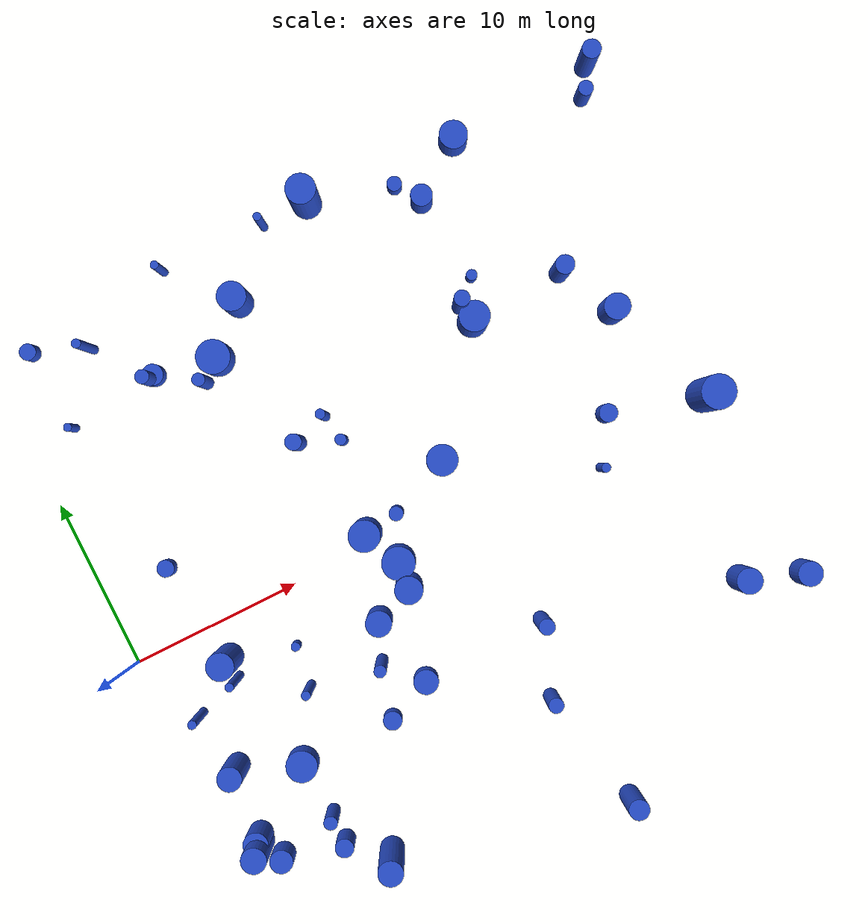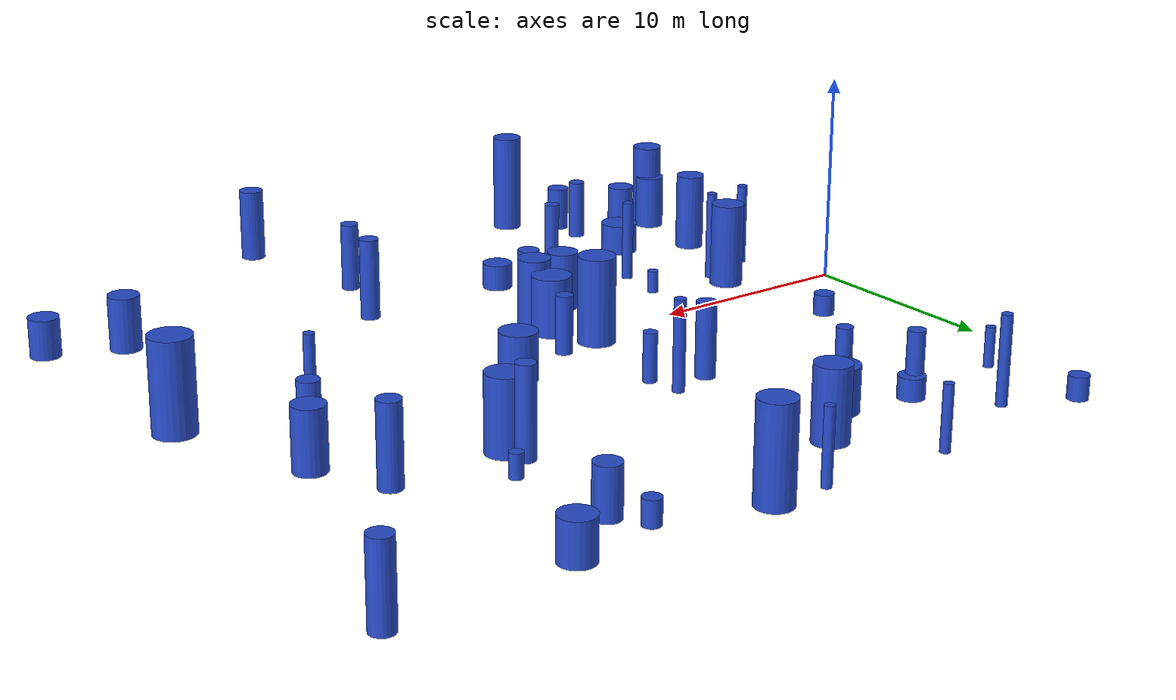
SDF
<sdf version="1.7">
 <world name="easy_forest">
  <model name="11">
   <static>1</static>
   <link name="link">
    <inertial>
     <mass>2</mass>
     <inertia><ixx>1.28404</ixx><ixy>0</ixy><ixz>0</ixz><iyy>1.28404</iyy><iyz>0</iyz><izz>0.803492</izz></inertia>
    </inertial>
    <collision name="collision">
     <geometry><cylinder><length>2.30082</length><radius>0.896377</radius></cylinder></geometry>
     <surface><contact><collide_without_contact>0</collide_without_contact></contact></surface>
    </collision>
    <visual name="visual">
     <geometry><cylinder><length>2.30082</length><radius>0.896377</radius></cylinder></geometry>
     <material>
      <script><uri>file://media/materials/scripts/gazebo.material</uri><name>Gazebo/Blue</name></script>
     </material>
    </visual>
    <gravity>0</gravity>
   </link>
   <pose>20.6606 2.5794 1.15041 0 -0 0</pose>
  </model>
  <model name="17">
   <static>1</static>
   <link name="link">
    <inertial>
     <mass>2</mass>
     <inertia><ixx>1.91129</ixx><ixy>0</ixy><ixz>0</ixz><iyy>1.91129</iyy><iyz>0</iyz><izz>0.186852</izz></inertia>
    </inertial>
    <collision name="collision">
     <geometry><cylinder><length>3.3026</length><radius>0.432264</radius></cylinder></geometry>
     <surface><contact><collide_without_contact>0</collide_without_contact></contact></surface>
    </collision>
    <visual name="visual">
     <geometry><cylinder><length>3.3026</length><radius>0.432264</radius></cylinder></geometry>
     <material>
      <script><uri>file://media/materials/scripts/gazebo.material</uri><name>Gazebo/Blue</name></script>
     </material>
    </visual>
    <gravity>0</gravity>
   </link>
   <pose>20.2077 -12.26 1.6513 0 -0 0</pose>
  </model>
  <model name="25">
   <static>1</static>
   <link name="link">
    <inertial>
     <mass>2</mass>
     <inertia><ixx>2.4495</ixx><ixy>0</ixy><ixz>0</ixz><iyy>2.4495</iyy><iyz>0</iyz><izz>0.767485</izz></inertia>
    </inertial>
    <collision name="collision">
     <geometry><cylinder><length>3.52059</length><radius>0.876062</radius></cylinder></geometry>
     <surface><contact><collide_without_contact>0</collide_without_contact></contact></surface>
    </collision>
    <visual name="visual">
     <geometry><cylinder><length>3.52059</length><radius>0.876062</radius></cylinder></geometry>
     <material>
      <script><uri>file://media/materials/scripts/gazebo.material</uri><name>Gazebo/Blue</name></script>
     </material>
    </visual>
    <gravity>0</gravity>
   </link>
   <pose>25.7538 8.85397 1.76029 0 -0 0</pose>
  </model>
  <model name="27">
   <static>1</static>
   <link name="link">
    <inertial>
     <mass>2</mass>
     <inertia>
      <ixx>3.06912</ixx>
      <ixy>0</ixy>
      <ixz>0</ixz>
      <iyy>3.06912</iyy>
      <iyz>0</iyz>
      <izz>0.0786724</izz>
     </inertia>
    </inertial>
    <collision name="collision">
     <geometry><cylinder><length>4.26365</length><radius>0.280486</radius></cylinder></geometry>
     <surface><contact><collide_without_contact>0</collide_without_contact></contact></surface>
    </collision>
    <visual name="visual">
     <geometry><cylinder><length>4.26365</length><radius>0.280486</radius></cylinder></geometry>
     <material>
      <script><uri>file://media/materials/scripts/gazebo.material</uri><name>Gazebo/Blue</name></script>
     </material>
    </visual>
    <gravity>0</gravity>
   </link>
   <pose>15.8342 7.79594 2.13183 0 -0 0</pose>
  </model>
  <model name="33">
   <static>1</static>
   <link name="link">
    <inertial>
     <mass>2</mass>
     <inertia>
      <ixx>0.344495</ixx>
      <ixy>0</ixy>
      <ixz>0</ixz>
      <iyy>0.344495</iyy>
      <iyz>0</iyz>
      <izz>0.292135</izz>
     </inertia>
    </inertial>
    <collision name="collision">
     <geometry><cylinder><length>1.09113</length><radius>0.540495</radius></cylinder></geometry>
     <surface><contact><collide_without_contact>0</collide_without_contact></contact></surface>
    </collision>
    <visual name="visual">
     <geometry><cylinder><length>1.09113</length><radius>0.540495</radius></cylinder></geometry>
     <material>
      <script><uri>file://media/materials/scripts/gazebo.material</uri><name>Gazebo/Blue</name></script>
     </material>
    </visual>
    <gravity>0</gravity>
   </link>
   <pose>11.5808 -9.34368 0.545565 0 -0 0</pose>
  </model>
  <model name="34">
   <static>1</static>
   <link name="link">
    <inertial>
     <mass>2</mass>
     <inertia>
      <ixx>0.848579</ixx>
      <ixy>0</ixy>
      <ixz>0</ixz>
      <iyy>0.848579</iyy>
      <iyz>0</iyz>
      <izz>0.514864</izz>
     </inertia>
    </inertial>
    <collision name="collision">
     <geometry><cylinder><length>1.88332</length><radius>0.717541</radius></cylinder></geometry>
     <surface><contact><collide_without_contact>0</collide_without_contact></contact></surface>
    </collision>
    <visual name="visual">
     <geometry><cylinder><length>1.88332</length><radius>0.717541</radius></cylinder></geometry>
     <material>
      <script><uri>file://media/materials/scripts/gazebo.material</uri><name>Gazebo/Blue</name></script>
     </material>
    </visual>
    <gravity>0</gravity>
   </link>
   <pose>36.2442 -12.3285 0.941659 0 -0 0</pose>
  </model>
  <model name="35">
   <static>1</static>
   <link name="link">
    <inertial>
     <mass>2</mass>
     <inertia>
      <ixx>1.54138</ixx>
      <ixy>0</ixy>
      <ixz>0</ixz>
      <iyy>1.54138</iyy>
      <iyz>0</iyz>
      <izz>0.0535936</izz>
     </inertia>
    </inertial>
    <collision name="collision">
     <geometry><cylinder><length>3.01455</length><radius>0.231503</radius></cylinder></geometry>
     <surface><contact><collide_without_contact>0</collide_without_contact></contact></surface>
    </collision>
    <visual name="visual">
     <geometry><cylinder><length>3.01455</length><radius>0.231503</radius></cylinder></geometry>
     <material>
      <script><uri>file://media/materials/scripts/gazebo.material</uri><name>Gazebo/Blue</name></script>
     </material>
    </visual>
    <gravity>0</gravity>
   </link>
   <pose>11.2769 19.3033 1.50727 0 -0 0</pose>
  </model>
  <model name="43">
   <static>1</static>
   <link name="link">
    <inertial>
     <mass>2</mass>
     <inertia>
      <ixx>0.323352</ixx>
      <ixy>0</ixy>
      <ixz>0</ixz>
      <iyy>0.323352</iyy>
      <iyz>0</iyz>
      <izz>0.180376</izz>
     </inertia>
    </inertial>
    <collision name="collision">
     <geometry><cylinder><length>1.18279</length><radius>0.424707</radius></cylinder></geometry>
     <surface><contact><collide_without_contact>0</collide_without_contact></contact></surface>
    </collision>
    <visual name="visual">
     <geometry><cylinder><length>1.18279</length><radius>0.424707</radius></cylinder></geometry>
     <material>
      <script><uri>file://media/materials/scripts/gazebo.material</uri><name>Gazebo/Blue</name></script>
     </material>
    </visual>
    <gravity>0</gravity>
   </link>
   <pose>25.2338 17.7403 0.591393 0 -0 0</pose>
  </model>
  <model name="44">
   <static>1</static>
   <link name="link">
    <inertial>
     <mass>2</mass>
     <inertia><ixx>1.05972</ixx><ixy>0</ixy><ixz>0</ixz><iyy>1.05972</iyy><iyz>0</iyz><izz>0.18516</izz></inertia>
    </inertial>
    <collision name="collision">
     <geometry><cylinder><length>2.4089</length><radius>0.430302</radius></cylinder></geometry>
     <surface><contact><collide_without_contact>0</collide_without_contact></contact></surface>
    </collision>
    <visual name="visual">
     <geometry><cylinder><length>2.4089</length><radius>0.430302</radius></cylinder></geometry>
     <material>
      <script><uri>file://media/materials/scripts/gazebo.material</uri><name>Gazebo/Blue</name></script>
     </material>
    </visual>
    <gravity>0</gravity>
   </link>
   <pose>37.0413 17.4916 1.20445 0 -0 0</pose>
  </model>
  <model name="46">
   <static>1</static>
   <link name="link">
    <inertial>
     <mass>2</mass>
     <inertia><ixx>1.43688</ixx><ixy>0</ixy><ixz>0</ixz><iyy>1.43688</iyy><iyz>0</iyz><izz>0.51936</izz></inertia>
    </inertial>
    <collision name="collision">
     <geometry><cylinder><length>2.65767</length><radius>0.720666</radius></cylinder></geometry>
     <surface><contact><collide_without_contact>0</collide_without_contact></contact></surface>
    </collision>
    <visual name="visual">
     <geometry><cylinder><length>2.65767</length><radius>0.720666</radius></cylinder></geometry>
     <material>
      <script><uri>file://media/materials/scripts/gazebo.material</uri><name>Gazebo/Blue</name></script>
     </material>
    </visual>
    <gravity>0</gravity>
   </link>
   <pose>1.87089 -11.8641 1.32884 0 -0 0</pose>
  </model>
  <model name="50">
   <static>1</static>
   <link name="link">
    <inertial>
     <mass>2</mass>
     <inertia><ixx>1.37235</ixx><ixy>0</ixy><ixz>0</ixz><iyy>1.37235</iyy><iyz>0</iyz><izz>0.16596</izz></inertia>
    </inertial>
    <collision name="collision">
     <geometry><cylinder><length>2.78141</length><radius>0.407382</radius></cylinder></geometry>
     <surface><contact><collide_without_contact>0</collide_without_contact></contact></surface>
    </collision>
    <visual name="visual">
     <geometry><cylinder><length>2.78141</length><radius>0.407382</radius></cylinder></geometry>
     <material>
      <script><uri>file://media/materials/scripts/gazebo.material</uri><name>Gazebo/Blue</name></script>
     </material>
    </visual>
    <gravity>0</gravity>
   </link>
   <pose>17.0476 1.08046 1.3907 0 -0 0</pose>
  </model>
  <model name="53">
   <static>1</static>
   <link name="link">
    <inertial>
     <mass>2</mass>
     <inertia><ixx>3.73629</ixx><ixy>0</ixy><ixz>0</ixz><iyy>3.73629</iyy><iyz>0</iyz><izz>0.722384</izz></inertia>
    </inertial>
    <collision name="collision">
     <geometry><cylinder><length>4.50007</length><radius>0.849932</radius></cylinder></geometry>
     <surface><contact><collide_without_contact>0</collide_without_contact></contact></surface>
    </collision>
    <visual name="visual">
     <geometry><cylinder><length>4.50007</length><radius>0.849932</radius></cylinder></geometry>
     <material>
      <script><uri>file://media/materials/scripts/gazebo.material</uri><name>Gazebo/Blue</name></script>
     </material>
    </visual>
    <gravity>0</gravity>
   </link>
   <pose>20.3305 19.1279 2.25003 0 -0 0</pose>
  </model>
  <model name="55">
   <static>1</static>
   <link name="link">
    <inertial>
     <mass>2</mass>
     <inertia><ixx>1.40886</ixx><ixy>0</ixy><ixz>0</ixz><iyy>1.40886</iyy><iyz>0</iyz><izz>0.55177</izz></inertia>
    </inertial>
    <collision name="collision">
     <geometry><cylinder><length>2.60727</length><radius>0.742812</radius></cylinder></geometry>
     <surface><contact><collide_without_contact>0</collide_without_contact></contact></surface>
    </collision>
    <visual name="visual">
     <geometry><cylinder><length>2.60727</length><radius>0.742812</radius></cylinder></geometry>
     <material>
      <script><uri>file://media/materials/scripts/gazebo.material</uri><name>Gazebo/Blue</name></script>
     </material>
    </visual>
    <gravity>0</gravity>
   </link>
   <pose>32.8908 -11.0334 1.30363 0 -0 0</pose>
  </model>
  <model name="58">
   <static>1</static>
   <link name="link">
    <inertial>
     <mass>2</mass>
     <inertia><ixx>1.23198</ixx><ixy>0</ixy><ixz>0</ixz><iyy>1.23198</iyy><iyz>0</iyz><izz>0.96592</izz></inertia>
    </inertial>
    <collision name="collision">
     <geometry><cylinder><length>2.11993</length><radius>0.982812</radius></cylinder></geometry>
     <surface><contact><collide_without_contact>0</collide_without_contact></contact></surface>
    </collision>
    <visual name="visual">
     <geometry><cylinder><length>2.11993</length><radius>0.982812</radius></cylinder></geometry>
     <material>
      <script><uri>file://media/materials/scripts/gazebo.material</uri><name>Gazebo/Blue</name></script>
     </material>
    </visual>
    <gravity>0</gravity>
   </link>
   <pose>11.804 13.4618 1.05997 0 -0 0</pose>
  </model>
  <model name="59">
   <static>1</static>
   <link name="link">
    <inertial>
     <mass>2</mass>
     <inertia>
      <ixx>1.15038</ixx>
      <ixy>0</ixy>
      <ixz>0</ixz>
      <iyy>1.15038</iyy>
      <iyz>0</iyz>
      <izz>0.0702655</izz>
     </inertia>
    </inertial>
    <collision name="collision">
     <geometry><cylinder><length>2.58678</length><radius>0.265076</radius></cylinder></geometry>
     <surface><contact><collide_without_contact>0</collide_without_contact></contact></surface>
    </collision>
    <visual name="visual">
     <geometry><cylinder><length>2.58678</length><radius>0.265076</radius></cylinder></geometry>
     <material>
      <script><uri>file://media/materials/scripts/gazebo.material</uri><name>Gazebo/Blue</name></script>
     </material>
    </visual>
    <gravity>0</gravity>
   </link>
   <pose>28.5908 -1.85594 1.29339 0 -0 0</pose>
  </model>
  <model name="60">
   <static>1</static>
   <link name="link">
    <inertial>
     <mass>2</mass>
     <inertia><ixx>3.29251</ixx><ixy>0</ixy><ixz>0</ixz><iyy>3.29251</iyy><iyz>0</iyz><izz>0.790477</izz></inertia>
    </inertial>
    <collision name="collision">
     <geometry><cylinder><length>4.16937</length><radius>0.889088</radius></cylinder></geometry>
     <surface><contact><collide_without_contact>0</collide_without_contact></contact></surface>
    </collision>
    <visual name="visual">
     <geometry><cylinder><length>4.16937</length><radius>0.889088</radius></cylinder></geometry>
     <material>
      <script><uri>file://media/materials/scripts/gazebo.material</uri><name>Gazebo/Blue</name></script>
     </material>
    </visual>
    <gravity>0</gravity>
   </link>
   <pose>14.9939 0.797519 2.08468 0 -0 0</pose>
  </model>
  <model name="66">
   <static>1</static>
   <link name="link">
    <inertial>
     <mass>2</mass>
     <inertia>
      <ixx>0.783239</ixx>
      <ixy>0</ixy>
      <ixz>0</ixz>
      <iyy>0.783239</iyy>
      <iyz>0</iyz>
      <izz>0.448499</izz>
     </inertia>
    </inertial>
    <collision name="collision">
     <geometry><cylinder><length>1.83138</length><radius>0.6697</radius></cylinder></geometry>
     <surface><contact><collide_without_contact>0</collide_without_contact></contact></surface>
    </collision>
    <visual name="visual">
     <geometry><cylinder><length>1.83138</length><radius>0.6697</radius></cylinder></geometry>
     <material>
      <script><uri>file://media/materials/scripts/gazebo.material</uri><name>Gazebo/Blue</name></script>
     </material>
    </visual>
    <gravity>0</gravity>
   </link>
   <pose>2.54749 -13.4917 0.915688 0 -0 0</pose>
  </model>
  <model name="68">
   <static>1</static>
   <link name="link">
    <inertial>
     <mass>2</mass>
     <inertia>
      <ixx>2.04803</ixx>
      <ixy>0</ixy>
      <ixz>0</ixz>
      <iyy>2.04803</iyy>
      <iyz>0</iyz>
      <izz>0.0542715</izz>
     </inertia>
    </inertial>
    <collision name="collision">
     <geometry><cylinder><length>3.48215</length><radius>0.232962</radius></cylinder></geometry>
     <surface><contact><collide_without_contact>0</collide_without_contact></contact></surface>
    </collision>
    <visual name="visual">
     <geometry><cylinder><length>3.48215</length><radius>0.232962</radius></cylinder></geometry>
     <material>
      <script><uri>file://media/materials/scripts/gazebo.material</uri><name>Gazebo/Blue</name></script>
     </material>
    </visual>
    <gravity>0</gravity>
   </link>
   <pose>17.5427 19.052 1.74108 0 -0 0</pose>
  </model>
  <model name="70">
   <static>1</static>
   <link name="link">
    <inertial>
     <mass>2</mass>
     <inertia><ixx>1.49028</ixx><ixy>0</ixy><ixz>0</ixz><iyy>1.49028</iyy><iyz>0</iyz><izz>0.15348</izz></inertia>
    </inertial>
    <collision name="collision">
     <geometry><cylinder><length>2.91226</length><radius>0.391765</radius></cylinder></geometry>
     <surface><contact><collide_without_contact>0</collide_without_contact></contact></surface>
    </collision>
    <visual name="visual">
     <geometry><cylinder><length>2.91226</length><radius>0.391765</radius></cylinder></geometry>
     <material>
      <script><uri>file://media/materials/scripts/gazebo.material</uri><name>Gazebo/Blue</name></script>
     </material>
    </visual>
    <gravity>0</gravity>
   </link>
   <pose>6.17959 -12.5655 1.45613 0 -0 0</pose>
  </model>
  <model name="73">
   <static>1</static>
   <link name="link">
    <inertial>
     <mass>2</mass>
     <inertia><ixx>3.65436</ixx><ixy>0</ixy><ixz>0</ixz><iyy>3.65436</iyy><iyz>0</iyz><izz>0.962329</izz></inertia>
    </inertial>
    <collision name="collision">
     <geometry><cylinder><length>4.36339</length><radius>0.980984</radius></cylinder></geometry>
     <surface><contact><collide_without_contact>0</collide_without_contact></contact></surface>
    </collision>
    <visual name="visual">
     <geometry><cylinder><length>4.36339</length><radius>0.980984</radius></cylinder></geometry>
     <material>
      <script><uri>file://media/materials/scripts/gazebo.material</uri><name>Gazebo/Blue</name></script>
     </material>
    </visual>
    <gravity>0</gravity>
   </link>
   <pose>35.6719 -0.795508 2.1817 0 -0 0</pose>
  </model>
  <model name="74">
   <static>1</static>
   <link name="link">
    <inertial>
     <mass>2</mass>
     <inertia><ixx>2.55108</ixx><ixy>0</ixy><ixz>0</ixz><iyy>2.55108</iyy><iyz>0</iyz><izz>0.292928</izz></inertia>
    </inertial>
    <collision name="collision">
     <geometry><cylinder><length>3.79838</length><radius>0.541228</radius></cylinder></geometry>
     <surface><contact><collide_without_contact>0</collide_without_contact></contact></surface>
    </collision>
    <visual name="visual">
     <geometry><cylinder><length>3.79838</length><radius>0.541228</radius></cylinder></geometry>
     <material>
      <script><uri>file://media/materials/scripts/gazebo.material</uri><name>Gazebo/Blue</name></script>
     </material>
    </visual>
    <gravity>0</gravity>
   </link>
   <pose>31.4047 9.13593 1.89919 0 -0 0</pose>
  </model>
  <model name="76">
   <static>1</static>
   <link name="link">
    <inertial>
     <mass>2</mass>
     <inertia><ixx>4.25163</ixx><ixy>0</ixy><ixz>0</ixz><iyy>4.25163</iyy><iyz>0</iyz><izz>0.505667</izz></inertia>
    </inertial>
    <collision name="collision">
     <geometry><cylinder><length>4.89824</length><radius>0.711103</radius></cylinder></geometry>
     <surface><contact><collide_without_contact>0</collide_without_contact></contact></surface>
    </collision>
    <visual name="visual">
     <geometry><cylinder><length>4.89824</length><radius>0.711103</radius></cylinder></geometry>
     <material>
      <script><uri>file://media/materials/scripts/gazebo.material</uri><name>Gazebo/Blue</name></script>
     </material>
    </visual>
    <gravity>0</gravity>
   </link>
   <pose>8.20094 -16.0225 2.44912 0 -0 0</pose>
  </model>
  <model name="77">
   <static>1</static>
   <link name="link">
    <inertial>
     <mass>2</mass>
     <inertia>
      <ixx>2.69695</ixx>
      <ixy>0</ixy>
      <ixz>0</ixz>
      <iyy>2.69695</iyy>
      <iyz>0</iyz>
      <izz>0.0619636</izz>
     </inertia>
    </inertial>
    <collision name="collision">
     <geometry><cylinder><length>3.99948</length><radius>0.248925</radius></cylinder></geometry>
     <surface><contact><collide_without_contact>0</collide_without_contact></contact></surface>
    </collision>
    <visual name="visual">
     <geometry><cylinder><length>3.99948</length><radius>0.248925</radius></cylinder></geometry>
     <material>
      <script><uri>file://media/materials/scripts/gazebo.material</uri><name>Gazebo/Blue</name></script>
     </material>
    </visual>
    <gravity>0</gravity>
   </link>
   <pose>2.03012 -4.19481 1.99974 0 -0 0</pose>
  </model>
  <model name="79">
   <static>1</static>
   <link name="link">
    <inertial>
     <mass>2</mass>
     <inertia><ixx>2.4479</ixx><ixy>0</ixy><ixz>0</ixz><iyy>2.4479</iyy><iyz>0</iyz><izz>0.289907</izz></inertia>
    </inertial>
    <collision name="collision">
     <geometry><cylinder><length>3.71721</length><radius>0.53843</radius></cylinder></geometry>
     <surface><contact><collide_without_contact>0</collide_without_contact></contact></surface>
    </collision>
    <visual name="visual">
     <geometry><cylinder><length>3.71721</length><radius>0.53843</radius></cylinder></geometry>
     <material>
      <script><uri>file://media/materials/scripts/gazebo.material</uri><name>Gazebo/Blue</name></script>
     </material>
    </visual>
    <gravity>0</gravity>
   </link>
   <pose>37.9749 19.0124 1.85861 0 -0 0</pose>
  </model>
  <model name="82">
   <static>1</static>
   <link name="link">
    <inertial>
     <mass>2</mass>
     <inertia><ixx>1.58763</ixx><ixy>0</ixy><ixz>0</ixz><iyy>1.58763</iyy><iyz>0</iyz><izz>0.549877</izz></inertia>
    </inertial>
    <collision name="collision">
     <geometry><cylinder><length>2.80645</length><radius>0.741537</radius></cylinder></geometry>
     <surface><contact><collide_without_contact>0</collide_without_contact></contact></surface>
    </collision>
    <visual name="visual">
     <geometry><cylinder><length>2.80645</length><radius>0.741537</radius></cylinder></geometry>
     <material>
      <script><uri>file://media/materials/scripts/gazebo.material</uri><name>Gazebo/Blue</name></script>
     </material>
    </visual>
    <gravity>0</gravity>
   </link>
   <pose>13.4562 -3.93051 1.40322 0 -0 0</pose>
  </model>
  <model name="90">
   <static>1</static>
   <link name="link">
    <inertial>
     <mass>2</mass>
     <inertia>
      <ixx>0.268095</ixx>
      <ixy>0</ixy>
      <ixz>0</ixz>
      <iyy>0.268095</iyy>
      <iyz>0</iyz>
      <izz>0.101566</izz>
     </inertia>
    </inertial>
    <collision name="collision">
     <geometry><cylinder><length>1.14187</length><radius>0.318694</radius></cylinder></geometry>
     <surface><contact><collide_without_contact>0</collide_without_contact></contact></surface>
    </collision>
    <visual name="visual">
     <geometry><cylinder><length>1.14187</length><radius>0.318694</radius></cylinder></geometry>
     <material>
      <script><uri>file://media/materials/scripts/gazebo.material</uri><name>Gazebo/Blue</name></script>
     </material>
    </visual>
    <gravity>0</gravity>
   </link>
   <pose>26.8432 11.1855 0.570937 0 -0 0</pose>
  </model>
  <model name="93">
   <static>1</static>
   <link name="link">
    <inertial>
     <mass>2</mass>
     <inertia>
      <ixx>0.628926</ixx>
      <ixy>0</ixy>
      <ixz>0</ixz>
      <iyy>0.628926</iyy>
      <iyz>0</iyz>
      <izz>0.0540589</izz>
     </inertia>
    </inertial>
    <collision name="collision">
     <geometry><cylinder><length>1.90036</length><radius>0.232506</radius></cylinder></geometry>
     <surface><contact><collide_without_contact>0</collide_without_contact></contact></surface>
    </collision>
    <visual name="visual">
     <geometry><cylinder><length>1.90036</length><radius>0.232506</radius></cylinder></geometry>
     <material>
      <script><uri>file://media/materials/scripts/gazebo.material</uri><name>Gazebo/Blue</name></script>
     </material>
    </visual>
    <gravity>0</gravity>
   </link>
   <pose>2.75391 13.5982 0.950181 0 -0 0</pose>
  </model>
  <model name="94">
   <static>1</static>
   <link name="link">
    <inertial>
     <mass>2</mass>
     <inertia>
      <ixx>0.952879</ixx>
      <ixy>0</ixy>
      <ixz>0</ixz>
      <iyy>0.952879</iyy>
      <iyz>0</iyz>
      <izz>0.107946</izz>
     </inertia>
    </inertial>
    <collision name="collision">
     <geometry><cylinder><length>2.32238</length><radius>0.328552</radius></cylinder></geometry>
     <surface><contact><collide_without_contact>0</collide_without_contact></contact></surface>
    </collision>
    <visual name="visual">
     <geometry><cylinder><length>2.32238</length><radius>0.328552</radius></cylinder></geometry>
     <material>
      <script><uri>file://media/materials/scripts/gazebo.material</uri><name>Gazebo/Blue</name></script>
     </material>
    </visual>
    <gravity>0</gravity>
   </link>
   <pose>16.1127 6.14078 1.16119 0 -0 0</pose>
  </model>
  <model name="100">
   <static>1</static>
   <link name="link">
    <inertial>
     <mass>2</mass>
     <inertia><ixx>3.19238</ixx><ixy>0</ixy><ixz>0</ixz><iyy>3.19238</iyy><iyz>0</iyz><izz>0.526477</izz></inertia>
    </inertial>
    <collision name="collision">
     <geometry><cylinder><length>4.19224</length><radius>0.725588</radius></cylinder></geometry>
     <surface><contact><collide_without_contact>0</collide_without_contact></contact></surface>
    </collision>
    <visual name="visual">
     <geometry><cylinder><length>4.19224</length><radius>0.725588</radius></cylinder></geometry>
     <material>
      <script><uri>file://media/materials/scripts/gazebo.material</uri><name>Gazebo/Blue</name></script>
     </material>
    </visual>
    <gravity>0</gravity>
   </link>
   <pose>1.74931 -12.2597 2.09612 0 -0 0</pose>
  </model>
  <model name="101">
   <static>1</static>
   <link name="link">
    <inertial>
     <mass>2</mass>
     <inertia><ixx>1.60899</ixx><ixy>0</ixy><ixz>0</ixz><iyy>1.60899</iyy><iyz>0</iyz><izz>0.162867</izz></inertia>
    </inertial>
    <collision name="collision">
     <geometry><cylinder><length>3.02743</length><radius>0.403568</radius></cylinder></geometry>
     <surface><contact><collide_without_contact>0</collide_without_contact></contact></surface>
    </collision>
    <visual name="visual">
     <geometry><cylinder><length>3.02743</length><radius>0.403568</radius></cylinder></geometry>
     <material>
      <script><uri>file://media/materials/scripts/gazebo.material</uri><name>Gazebo/Blue</name></script>
     </material>
    </visual>
    <gravity>0</gravity>
   </link>
   <pose>7.91269 14.1049 1.51372 0 -0 0</pose>
  </model>
  <model name="103">
   <static>1</static>
   <link name="link">
    <inertial>
     <mass>2</mass>
     <inertia>
      <ixx>0.514048</ixx>
      <ixy>0</ixy>
      <ixz>0</ixz>
      <iyy>0.514048</iyy>
      <iyz>0</iyz>
      <izz>0.508067</izz>
     </inertia>
    </inertial>
    <collision name="collision">
     <geometry><cylinder><length>1.24904</length><radius>0.712788</radius></cylinder></geometry>
     <surface><contact><collide_without_contact>0</collide_without_contact></contact></surface>
    </collision>
    <visual name="visual">
     <geometry><cylinder><length>1.24904</length><radius>0.712788</radius></cylinder></geometry>
     <material>
      <script><uri>file://media/materials/scripts/gazebo.material</uri><name>Gazebo/Blue</name></script>
     </material>
    </visual>
    <gravity>0</gravity>
   </link>
   <pose>14.2634 -8.21294 0.624518 0 -0 0</pose>
  </model>
  <model name="104">
   <static>1</static>
   <link name="link">
    <inertial>
     <mass>2</mass>
     <inertia>
      <ixx>3.13993</ixx>
      <ixy>0</ixy>
      <ixz>0</ixz>
      <iyy>3.13993</iyy>
      <iyz>0</iyz>
      <izz>0.0597419</izz>
     </inertia>
    </inertial>
    <collision name="collision">
     <geometry><cylinder><length>4.31976</length><radius>0.244422</radius></cylinder></geometry>
     <surface><contact><collide_without_contact>0</collide_without_contact></contact></surface>
    </collision>
    <visual name="visual">
     <geometry><cylinder><length>4.31976</length><radius>0.244422</radius></cylinder></geometry>
     <material>
      <script><uri>file://media/materials/scripts/gazebo.material</uri><name>Gazebo/Blue</name></script>
     </material>
    </visual>
    <gravity>0</gravity>
   </link>
   <pose>4.82024 -3.24521 2.15988 0 -0 0</pose>
  </model>
  <model name="111">
   <static>1</static>
   <link name="link">
    <inertial>
     <mass>2</mass>
     <inertia><ixx>2.18652</ixx><ixy>0</ixy><ixz>0</ixz><iyy>2.18652</iyy><iyz>0</iyz><izz>0.221175</izz></inertia>
    </inertial>
    <collision name="collision">
     <geometry><cylinder><length>3.52925</length><radius>0.470292</radius></cylinder></geometry>
     <surface><contact><collide_without_contact>0</collide_without_contact></contact></surface>
    </collision>
    <visual name="visual">
     <geometry><cylinder><length>3.52925</length><radius>0.470292</radius></cylinder></geometry>
     <material>
      <script><uri>file://media/materials/scripts/gazebo.material</uri><name>Gazebo/Blue</name></script>
     </material>
    </visual>
    <gravity>0</gravity>
   </link>
   <pose>13.7857 7.1295 1.76463 0 -0 0</pose>
  </model>
  <model name="112">
   <static>1</static>
   <link name="link">
    <inertial>
     <mass>2</mass>
     <inertia><ixx>2.37302</ixx><ixy>0</ixy><ixz>0</ixz><iyy>2.37302</iyy><iyz>0</iyz><izz>0.690317</izz></inertia>
    </inertial>
    <collision name="collision">
     <geometry><cylinder><length>3.48815</length><radius>0.830853</radius></cylinder></geometry>
     <surface><contact><collide_without_contact>0</collide_without_contact></contact></surface>
    </collision>
    <visual name="visual">
     <geometry><cylinder><length>3.48815</length><radius>0.830853</radius></cylinder></geometry>
     <material>
      <script><uri>file://media/materials/scripts/gazebo.material</uri><name>Gazebo/Blue</name></script>
     </material>
    </visual>
    <gravity>0</gravity>
   </link>
   <pose>14.3305 15.7871 1.74408 0 -0 0</pose>
  </model>
  <model name="116">
   <static>1</static>
   <link name="link">
    <inertial>
     <mass>2</mass>
     <inertia>
      <ixx>2.91569</ixx>
      <ixy>0</ixy>
      <ixz>0</ixz>
      <iyy>2.91569</iyy>
      <iyz>0</iyz>
      <izz>0.0677413</izz>
     </inertia>
    </inertial>
    <collision name="collision">
     <geometry><cylinder><length>4.15823</length><radius>0.260272</radius></cylinder></geometry>
     <surface><contact><collide_without_contact>0</collide_without_contact></contact></surface>
    </collision>
    <visual name="visual">
     <geometry><cylinder><length>4.15823</length><radius>0.260272</radius></cylinder></geometry>
     <material>
      <script><uri>file://media/materials/scripts/gazebo.material</uri><name>Gazebo/Blue</name></script>
     </material>
    </visual>
    <gravity>0</gravity>
   </link>
   <pose>5.70113 17.1455 2.07912 0 -0 0</pose>
  </model>
  <model name="118">
   <static>1</static>
   <link name="link">
    <inertial>
     <mass>2</mass>
     <inertia><ixx>1.87042</ixx><ixy>0</ixy><ixz>0</ixz><iyy>1.87042</iyy><iyz>0</iyz><izz>0.138968</izz></inertia>
    </inertial>
    <collision name="collision">
     <geometry><cylinder><length>3.28719</length><radius>0.372784</radius></cylinder></geometry>
     <surface><contact><collide_without_contact>0</collide_without_contact></contact></surface>
    </collision>
    <visual name="visual">
     <geometry><cylinder><length>3.28719</length><radius>0.372784</radius></cylinder></geometry>
     <material>
      <script><uri>file://media/materials/scripts/gazebo.material</uri><name>Gazebo/Blue</name></script>
     </material>
    </visual>
    <gravity>0</gravity>
   </link>
   <pose>10.6507 12.5376 1.64359 0 -0 0</pose>
  </model>
  <model name="122">
   <static>1</static>
   <link name="link">
    <inertial>
     <mass>2</mass>
     <inertia><ixx>3.10523</ixx><ixy>0</ixy><ixz>0</ixz><iyy>3.10523</iyy><iyz>0</iyz><izz>0.620036</izz></inertia>
    </inertial>
    <collision name="collision">
     <geometry><cylinder><length>4.09527</length><radius>0.787423</radius></cylinder></geometry>
     <surface><contact><collide_without_contact>0</collide_without_contact></contact></surface>
    </collision>
    <visual name="visual">
     <geometry><cylinder><length>4.09527</length><radius>0.787423</radius></cylinder></geometry>
     <material>
      <script><uri>file://media/materials/scripts/gazebo.material</uri><name>Gazebo/Blue</name></script>
     </material>
    </visual>
    <gravity>0</gravity>
   </link>
   <pose>4.80916 -2.04735 2.04764 0 -0 0</pose>
  </model>
  <model name="124">
   <static>1</static>
   <link name="link">
    <inertial>
     <mass>2</mass>
     <inertia><ixx>2.55678</ixx><ixy>0</ixy><ixz>0</ixz><iyy>2.55678</iyy><iyz>0</iyz><izz>0.06908</izz></inertia>
    </inertial>
    <collision name="collision">
     <geometry><cylinder><length>3.89017</length><radius>0.262831</radius></cylinder></geometry>
     <surface><contact><collide_without_contact>0</collide_without_contact></contact></surface>
    </collision>
    <visual name="visual">
     <geometry><cylinder><length>3.89017</length><radius>0.262831</radius></cylinder></geometry>
     <material>
      <script><uri>file://media/materials/scripts/gazebo.material</uri><name>Gazebo/Blue</name></script>
     </material>
    </visual>
    <gravity>0</gravity>
   </link>
   <pose>8.25881 -5.55588 1.94509 0 -0 0</pose>
  </model>
  <model name="125">
   <static>1</static>
   <link name="link">
    <inertial>
     <mass>2</mass>
     <inertia>
      <ixx>0.322525</ixx>
      <ixy>0</ixy>
      <ixz>0</ixz>
      <iyy>0.322525</iyy>
      <iyz>0</iyz>
      <izz>0.228773</izz>
     </inertia>
    </inertial>
    <collision name="collision">
     <geometry><cylinder><length>1.11751</length><radius>0.478302</radius></cylinder></geometry>
     <surface><contact><collide_without_contact>0</collide_without_contact></contact></surface>
    </collision>
    <visual name="visual">
     <geometry><cylinder><length>1.11751</length><radius>0.478302</radius></cylinder></geometry>
     <material>
      <script><uri>file://media/materials/scripts/gazebo.material</uri><name>Gazebo/Blue</name></script>
     </material>
    </visual>
    <gravity>0</gravity>
   </link>
   <pose>2.46519 18.5192 0.558755 0 -0 0</pose>
  </model>
  <model name="128">
   <static>1</static>
   <link name="link">
    <inertial>
     <mass>2</mass>
     <inertia>
      <ixx>0.299047</ixx>
      <ixy>0</ixy>
      <ixz>0</ixz>
      <iyy>0.299047</iyy>
      <iyz>0</iyz>
      <izz>0.245326</izz>
     </inertia>
    </inertial>
    <collision name="collision">
     <geometry><cylinder><length>1.02874</length><radius>0.495304</radius></cylinder></geometry>
     <surface><contact><collide_without_contact>0</collide_without_contact></contact></surface>
    </collision>
    <visual name="visual">
     <geometry><cylinder><length>1.02874</length><radius>0.495304</radius></cylinder></geometry>
     <material>
      <script><uri>file://media/materials/scripts/gazebo.material</uri><name>Gazebo/Blue</name></script>
     </material>
    </visual>
    <gravity>0</gravity>
   </link>
   <pose>3.93589 4.09007 0.514369 0 -0 0</pose>
  </model>
  <model name="129">
   <static>1</static>
   <link name="link">
    <inertial>
     <mass>2</mass>
     <inertia><ixx>3.34183</ixx><ixy>0</ixy><ixz>0</ixz><iyy>3.34183</iyy><iyz>0</iyz><izz>0.122216</izz></inertia>
    </inertial>
    <collision name="collision">
     <geometry><cylinder><length>4.4367</length><radius>0.349593</radius></cylinder></geometry>
     <surface><contact><collide_without_contact>0</collide_without_contact></contact></surface>
    </collision>
    <visual name="visual">
     <geometry><cylinder><length>4.4367</length><radius>0.349593</radius></cylinder></geometry>
     <material>
      <script><uri>file://media/materials/scripts/gazebo.material</uri><name>Gazebo/Blue</name></script>
     </material>
    </visual>
    <gravity>0</gravity>
   </link>
   <pose>12.5101 -6.11326 2.21835 0 -0 0</pose>
  </model>
  <model name="134">
   <static>1</static>
   <link name="link">
    <inertial>
     <mass>2</mass>
     <inertia><ixx>3.06711</ixx><ixy>0</ixy><ixz>0</ixz><iyy>3.06711</iyy><iyz>0</iyz><izz>0.204949</izz></inertia>
    </inertial>
    <collision name="collision">
     <geometry><cylinder><length>4.21756</length><radius>0.452713</radius></cylinder></geometry>
     <surface><contact><collide_without_contact>0</collide_without_contact></contact></surface>
    </collision>
    <visual name="visual">
     <geometry><cylinder><length>4.21756</length><radius>0.452713</radius></cylinder></geometry>
     <material>
      <script><uri>file://media/materials/scripts/gazebo.material</uri><name>Gazebo/Blue</name></script>
     </material>
    </visual>
    <gravity>0</gravity>
   </link>
   <pose>25.5167 9.96358 2.10878 0 -0 0</pose>
  </model>
  <model name="135">
   <static>1</static>
   <link name="link">
    <inertial>
     <mass>2</mass>
     <inertia><ixx>0.92421</ixx><ixy>0</ixy><ixz>0</ixz><iyy>0.92421</iyy><iyz>0</iyz><izz>0.287112</izz></inertia>
    </inertial>
    <collision name="collision">
     <geometry><cylinder><length>2.16424</length><radius>0.535828</radius></cylinder></geometry>
     <surface><contact><collide_without_contact>0</collide_without_contact></contact></surface>
    </collision>
    <visual name="visual">
     <geometry><cylinder><length>2.16424</length><radius>0.535828</radius></cylinder></geometry>
     <material>
      <script><uri>file://media/materials/scripts/gazebo.material</uri><name>Gazebo/Blue</name></script>
     </material>
    </visual>
    <gravity>0</gravity>
   </link>
   <pose>6.11183 -14.3165 1.08212 0 -0 0</pose>
  </model>
  <model name="136">
   <static>1</static>
   <link name="link">
    <inertial>
     <mass>2</mass>
     <inertia>
      <ixx>0.229603</ixx>
      <ixy>0</ixy>
      <ixz>0</ixz>
      <iyy>0.229603</iyy>
      <iyz>0</iyz>
      <izz>0.0688206</izz>
     </inertia>
    </inertial>
    <collision name="collision">
     <geometry><cylinder><length>1.0822</length><radius>0.262337</radius></cylinder></geometry>
     <surface><contact><collide_without_contact>0</collide_without_contact></contact></surface>
    </collision>
    <visual name="visual">
     <geometry><cylinder><length>1.0822</length><radius>0.262337</radius></cylinder></geometry>
     <material>
      <script><uri>file://media/materials/scripts/gazebo.material</uri><name>Gazebo/Blue</name></script>
     </material>
    </visual>
    <gravity>0</gravity>
   </link>
   <pose>8.54504 -3.14888 0.541099 0 -0 0</pose>
  </model>
  <model name="137">
   <static>1</static>
   <link name="link">
    <inertial>
     <mass>2</mass>
     <inertia><ixx>2.02417</ixx><ixy>0</ixy><ixz>0</ixz><iyy>2.02417</iyy><iyz>0</iyz><izz>0.628378</izz></inertia>
    </inertial>
    <collision name="collision">
     <geometry><cylinder><length>3.20311</length><radius>0.792703</radius></cylinder></geometry>
     <surface><contact><collide_without_contact>0</collide_without_contact></contact></surface>
    </collision>
    <visual name="visual">
     <geometry><cylinder><length>3.20311</length><radius>0.792703</radius></cylinder></geometry>
     <material>
      <script><uri>file://media/materials/scripts/gazebo.material</uri><name>Gazebo/Blue</name></script>
     </material>
    </visual>
    <gravity>0</gravity>
   </link>
   <pose>15.7955 -2.98909 1.60155 0 -0 0</pose>
  </model>
  <model name="140">
   <static>1</static>
   <link name="link">
    <inertial>
     <mass>2</mass>
     <inertia><ixx>2.65578</ixx><ixy>0</ixy><ixz>0</ixz><iyy>2.65578</iyy><iyz>0</iyz><izz>0.208426</izz></inertia>
    </inertial>
    <collision name="collision">
     <geometry><cylinder><length>3.91272</length><radius>0.456537</radius></cylinder></geometry>
     <surface><contact><collide_without_contact>0</collide_without_contact></contact></surface>
    </collision>
    <visual name="visual">
     <geometry><cylinder><length>3.91272</length><radius>0.456537</radius></cylinder></geometry>
     <material>
      <script><uri>file://media/materials/scripts/gazebo.material</uri><name>Gazebo/Blue</name></script>
     </material>
    </visual>
    <gravity>0</gravity>
   </link>
   <pose>21.6693 -8.07881 1.95636 0 -0 0</pose>
  </model>
  <model name="144">
   <static>1</static>
   <link name="link">
    <inertial>
     <mass>2</mass>
     <inertia><ixx>1.77052</ixx><ixy>0</ixy><ixz>0</ixz><iyy>1.77052</iyy><iyz>0</iyz><izz>0.901899</izz></inertia>
    </inertial>
    <collision name="collision">
     <geometry><cylinder><length>2.81379</length><radius>0.949684</radius></cylinder></geometry>
     <surface><contact><collide_without_contact>0</collide_without_contact></contact></surface>
    </collision>
    <visual name="visual">
     <geometry><cylinder><length>2.81379</length><radius>0.949684</radius></cylinder></geometry>
     <material>
      <script><uri>file://media/materials/scripts/gazebo.material</uri><name>Gazebo/Blue</name></script>
     </material>
    </visual>
    <gravity>0</gravity>
   </link>
   <pose>15.9356 -1.43124 1.40689 0 -0 0</pose>
  </model>
  <model name="145">
   <static>1</static>
   <link name="link">
    <inertial>
     <mass>2</mass>
     <inertia><ixx>2.27155</ixx><ixy>0</ixy><ixz>0</ixz><iyy>2.27155</iyy><iyz>0</iyz><izz>0.344135</izz></inertia>
    </inertial>
    <collision name="collision">
     <geometry><cylinder><length>3.54921</length><radius>0.58663</radius></cylinder></geometry>
     <surface><contact><collide_without_contact>0</collide_without_contact></contact></surface>
    </collision>
    <visual name="visual">
     <geometry><cylinder><length>3.54921</length><radius>0.58663</radius></cylinder></geometry>
     <material>
      <script><uri>file://media/materials/scripts/gazebo.material</uri><name>Gazebo/Blue</name></script>
     </material>
    </visual>
    <gravity>0</gravity>
   </link>
   <pose>21.7117 -19.3418 1.77461 0 -0 0</pose>
  </model>
  <model name="146">
   <static>1</static>
   <link name="link">
    <inertial>
     <mass>2</mass>
     <inertia><ixx>2.64307</ixx><ixy>0</ixy><ixz>0</ixz><iyy>2.64307</iyy><iyz>0</iyz><izz>0.483009</izz></inertia>
    </inertial>
    <collision name="collision">
     <geometry><cylinder><length>3.79597</length><radius>0.694988</radius></cylinder></geometry>
     <surface><contact><collide_without_contact>0</collide_without_contact></contact></surface>
    </collision>
    <visual name="visual">
     <geometry><cylinder><length>3.79597</length><radius>0.694988</radius></cylinder></geometry>
     <material>
      <script><uri>file://media/materials/scripts/gazebo.material</uri><name>Gazebo/Blue</name></script>
     </material>
    </visual>
    <gravity>0</gravity>
   </link>
   <pose>2.46184 -7.7776 1.89798 0 -0 0</pose>
  </model>
  <model name="149">
   <static>1</static>
   <link name="link">
    <inertial>
     <mass>2</mass>
     <inertia>
      <ixx>0.948186</ixx>
      <ixy>0</ixy>
      <ixz>0</ixz>
      <iyy>0.948186</iyy>
      <iyz>0</iyz>
      <izz>0.655446</izz>
     </inertia>
    </inertial>
    <collision name="collision">
     <geometry><cylinder><length>1.92945</length><radius>0.809596</radius></cylinder></geometry>
     <surface><contact><collide_without_contact>0</collide_without_contact></contact></surface>
    </collision>
    <visual name="visual">
     <geometry><cylinder><length>1.92945</length><radius>0.809596</radius></cylinder></geometry>
     <material>
      <script><uri>file://media/materials/scripts/gazebo.material</uri><name>Gazebo/Blue</name></script>
     </material>
    </visual>
    <gravity>0</gravity>
   </link>
   <pose>29.3649 18.5769 0.964725 0 -0 0</pose>
  </model>
  <model name="150">
   <static>1</static>
   <link name="link">
    <inertial>
     <mass>2</mass>
     <inertia>
      <ixx>0.778011</ixx>
      <ixy>0</ixy>
      <ixz>0</ixz>
      <iyy>0.778011</iyy>
      <iyz>0</iyz>
      <izz>0.822603</izz>
     </inertia>
    </inertial>
    <collision name="collision">
     <geometry><cylinder><length>1.48333</length><radius>0.906974</radius></cylinder></geometry>
     <surface><contact><collide_without_contact>0</collide_without_contact></contact></surface>
    </collision>
    <visual name="visual">
     <geometry><cylinder><length>1.48333</length><radius>0.906974</radius></cylinder></geometry>
     <material>
      <script><uri>file://media/materials/scripts/gazebo.material</uri><name>Gazebo/Blue</name></script>
     </material>
    </visual>
    <gravity>0</gravity>
   </link>
   <pose>5.88814 -9.29541 0.741663 0 -0 0</pose>
  </model>
  <model name="154">
   <static>1</static>
   <link name="link">
    <inertial>
     <mass>2</mass>
     <inertia><ixx>1.1227</ixx><ixy>0</ixy><ixz>0</ixz><iyy>1.1227</iyy><iyz>0</iyz><izz>0.389561</izz></inertia>
    </inertial>
    <collision name="collision">
     <geometry><cylinder><length>2.35956</length><radius>0.624148</radius></cylinder></geometry>
     <surface><contact><collide_without_contact>0</collide_without_contact></contact></surface>
    </collision>
    <visual name="visual">
     <geometry><cylinder><length>2.35956</length><radius>0.624148</radius></cylinder></geometry>
     <material>
      <script><uri>file://media/materials/scripts/gazebo.material</uri><name>Gazebo/Blue</name></script>
     </material>
    </visual>
    <gravity>0</gravity>
   </link>
   <pose>26.218 16.2749 1.17978 0 -0 0</pose>
  </model>
  <model name="155">
   <static>1</static>
   <link name="link">
    <inertial>
     <mass>2</mass>
     <inertia>
      <ixx>0.597513</ixx>
      <ixy>0</ixy>
      <ixz>0</ixz>
      <iyy>0.597513</iyy>
      <iyz>0</iyz>
      <izz>0.28288</izz>
     </inertia>
    </inertial>
    <collision name="collision">
     <geometry><cylinder><length>1.65422</length><radius>0.531864</radius></cylinder></geometry>
     <surface><contact><collide_without_contact>0</collide_without_contact></contact></surface>
    </collision>
    <visual name="visual">
     <geometry><cylinder><length>1.65422</length><radius>0.531864</radius></cylinder></geometry>
     <material>
      <script><uri>file://media/materials/scripts/gazebo.material</uri><name>Gazebo/Blue</name></script>
     </material>
    </visual>
    <gravity>0</gravity>
   </link>
   <pose>30.1929 0.772266 0.82711 0 -0 0</pose>
  </model>
  <model name="161">
   <static>1</static>
   <link name="link">
    <inertial>
     <mass>2</mass>
     <inertia><ixx>1.69389</ixx><ixy>0</ixy><ixz>0</ixz><iyy>1.69389</iyy><iyz>0</iyz><izz>0.571168</izz></inertia>
    </inertial>
    <collision name="collision">
     <geometry><cylinder><length>2.90686</length><radius>0.755757</radius></cylinder></geometry>
     <surface><contact><collide_without_contact>0</collide_without_contact></contact></surface>
    </collision>
    <visual name="visual">
     <geometry><cylinder><length>2.90686</length><radius>0.755757</radius></cylinder></geometry>
     <material>
      <script><uri>file://media/materials/scripts/gazebo.material</uri><name>Gazebo/Blue</name></script>
     </material>
    </visual>
    <gravity>0</gravity>
   </link>
   <pose>33.0988 5.85235 1.45343 0 -0 0</pose>
  </model>
  <model name="164">
   <static>1</static>
   <link name="link">
    <inertial>
     <mass>2</mass>
     <inertia>
      <ixx>0.373527</ixx>
      <ixy>0</ixy>
      <ixz>0</ixz>
      <iyy>0.373527</iyy>
      <iyz>0</iyz>
      <izz>0.386216</izz>
     </inertia>
    </inertial>
    <collision name="collision">
     <geometry><cylinder><length>1.04044</length><radius>0.621462</radius></cylinder></geometry>
     <surface><contact><collide_without_contact>0</collide_without_contact></contact></surface>
    </collision>
    <visual name="visual">
     <geometry><cylinder><length>1.04044</length><radius>0.621462</radius></cylinder></geometry>
     <material>
      <script><uri>file://media/materials/scripts/gazebo.material</uri><name>Gazebo/Blue</name></script>
     </material>
    </visual>
    <gravity>0</gravity>
   </link>
   <pose>8.18454 14.2281 0.52022 0 -0 0</pose>
  </model>
 </world>
</sdf>
